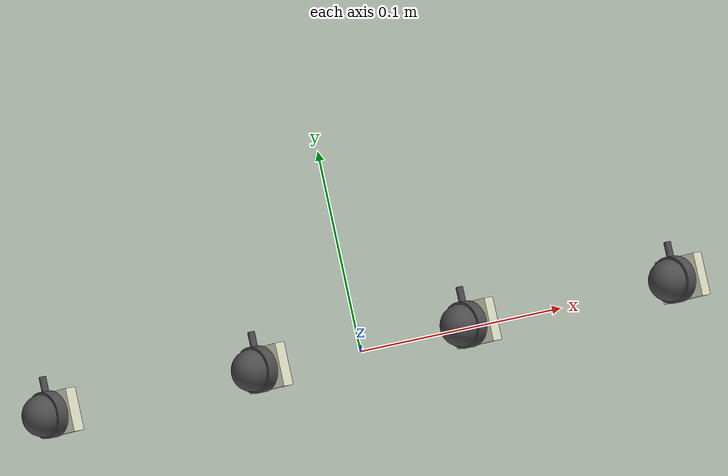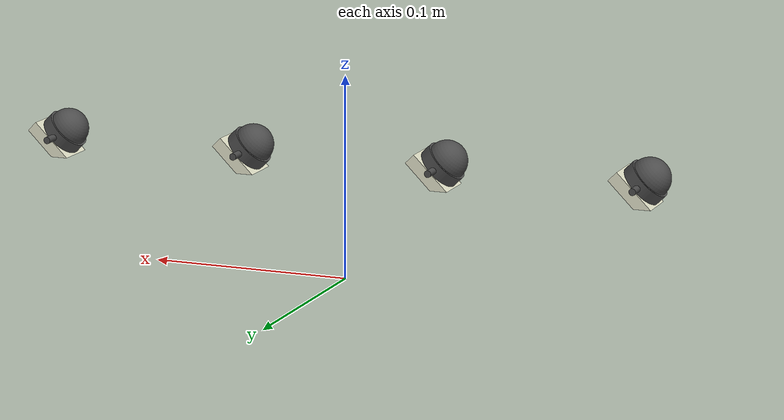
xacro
<?xml version="1.0"?>
<robot xmlns:xacro="http://www.ros.org/wiki/xacro" name="optoforce-test">

<!-- include single sensor -->
<xacro:include filename="$(find optoforce_publisher)/model/optoforce-omd.xacro" />

<xacro:macro name="sensor_joint"
        params="sensor_no">

  <joint name="root_to_sensor_${sensor_no}" type="fixed">
    <parent link="test_root"/>
    <child link="allegro_omd_adapter_${sensor_no}"/>
    <origin xyz="${-0.15+0.10*sensor_no} 0 0.05" rpy="0 0 0"/>
  </joint>

</xacro:macro>

<xacro:sensor
  sensor_no="0"
  link_name="sensor_0"
  />
<xacro:sensor
  sensor_no="1"
  link_name="sensor_1"
  />
<xacro:sensor
  sensor_no="2"
  link_name="sensor_2"
  />
<xacro:sensor
  sensor_no="3"
  link_name="sensor_3"
  />

<link name="test_root">
  <origin xyz="0 0 0"/>
</link>

<xacro:sensor_joint
  sensor_no="0"
  />
<xacro:sensor_joint
  sensor_no="1"
  />
<xacro:sensor_joint
  sensor_no="2"
  />
<xacro:sensor_joint
  sensor_no="3"
  />

</robot>

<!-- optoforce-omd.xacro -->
<robot xmlns:xacro="http://www.ros.org/wiki/xacro" name="optoforce-omd">

<xacro:property name="adapter_weight" value="0.006"/> <!-- TODO: measure it. This is approximate -->
<xacro:property name="sensor_weight" value="0.011"/>

<xacro:property name="adapter_length" value="0.021" />
<xacro:property name="adapter_radius" value="0.011" />
<xacro:property name="sensor_length" value="0.015" />
<xacro:property name="sensor_radius" value="0.011" />

<xacro:macro name="sensor"
      params="sensor_no link_name">

  <!-- TODO: remove allegro from naming -->
  <!-- adapter link -->
  <link name="allegro_omd_adapter_${sensor_no}">
  <visual>
      <geometry>
          <mesh filename="package://optoforce_publisher/model/optoforce-adapter.stl"/>
      </geometry>
      <origin rpy="0 0 0" xyz="0 0 0 "/>
      <material name="silicone">
          <color rgba="0.9 0.9 0.8 1"/>
      </material>
  </visual>
  <collision>
      <origin rpy="0 0 0.0" xyz="0 0 0.0105"/>
      <geometry>
          <cylinder radius="${adapter_radius}" length="${adapter_length}"/>
      </geometry>
  </collision>
  <inertial>
    <mass value="${adapter_weight}" />
    <origin xyz="0.00572 0.0000 0.00734" rpy="0 0 0"/>
    <inertia ixx="1.357851e-10" ixy="0.0" ixz="-0.431154e-10"
             iyy="1.013821e-10" iyz="0.0"
             izz="1.434174e-10" />
  </inertial>
  </link>

  <!-- sensor link -->
  <link name="omd_${sensor_no}">
    <visual>
        <geometry>
            <mesh filename="package://optoforce_publisher/model/optoforce-omd.stl"/>
        </geometry>
        <origin rpy="0 0 0" xyz="0 0 0 "/>
        <material name="rubber">
            <color rgba="0.3 0.3 0.3 1"/>
        </material>
    </visual>
    <collision>
        <origin rpy="0 0 0.0" xyz="0 0 0"/>
        <geometry>
            <cylinder radius="${sensor_radius}" length="${sensor_length}"/>
        </geometry>
    </collision>
    <inertial>
      <mass value="${sensor_weight}" />
      <origin xyz="0 0.0004 0.0027" rpy="0 0 0"/>
      <inertia ixx="2.5788464e-10" ixy="0.000044e-10" ixz="-0.000022e-10"
               iyy="2.359605e-10" iyz="0.082347e-10"
               izz="3.074446e-10" />
    </inertial>
  </link>

  <!-- joint between the adapter and the sensor -->
  <joint name="adapter_sensor_${sensor_no}" type="fixed">
    <parent link="allegro_omd_adapter_${sensor_no}"/>
    <child link="omd_${sensor_no}"/>
    <origin xyz="0.00265 0 0.0083" rpy="0 -0.79 0"/>
  </joint>

  <!-- sensor link -->
  <link name="${link_name}">
    <inertial>
      <mass value="0" />
      <origin xyz="0 0 0" rpy="0 0 0"/>
      <inertia ixx="0" ixy="0" ixz="0"
               iyy="0" iyz="0"
               izz="0" />
    </inertial>
  </link>

  <joint name="adapter_sensor_tip_${sensor_no}" type="fixed">
    <parent link="omd_${sensor_no}"/>
    <child link="${link_name}"/>
    <origin xyz="0 0 0.016" rpy="0 0 0"/>
  </joint>

</xacro:macro>

</robot>
